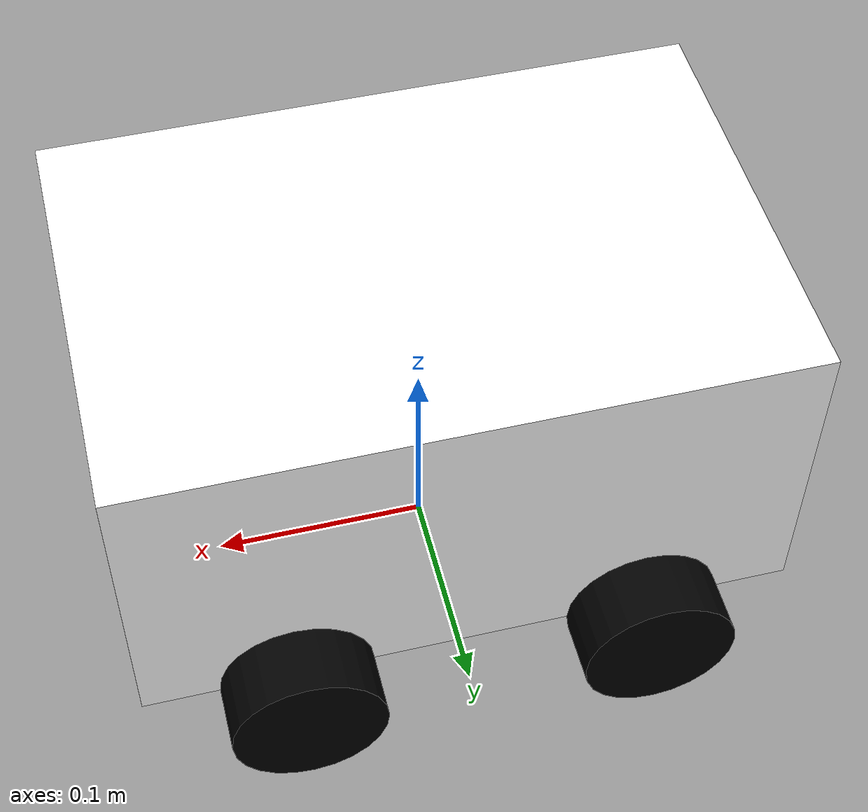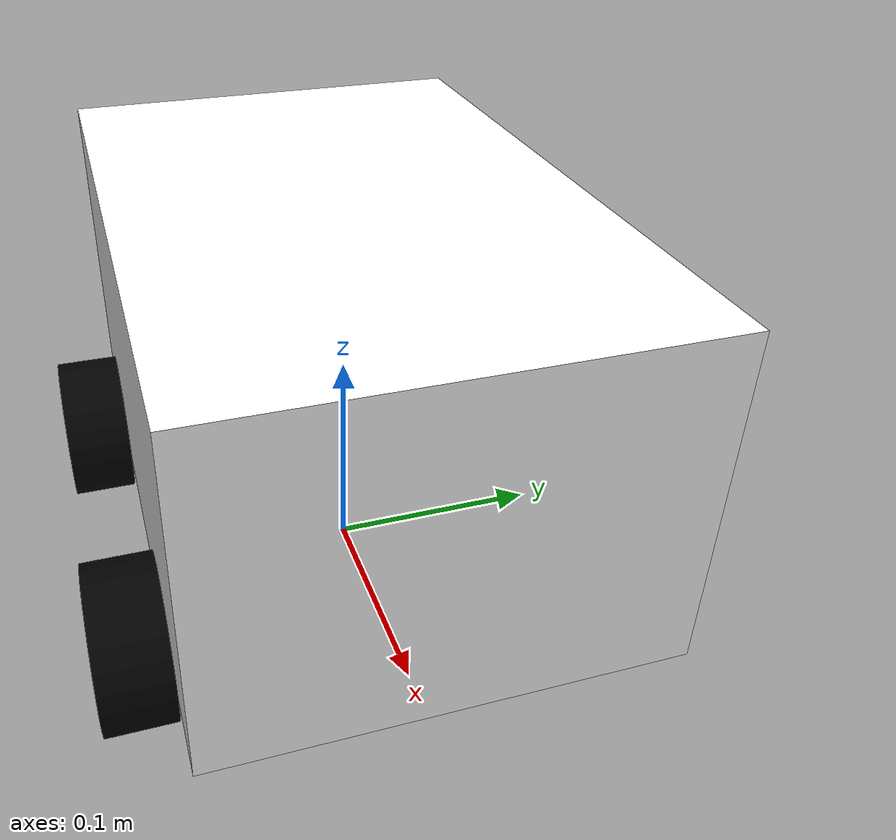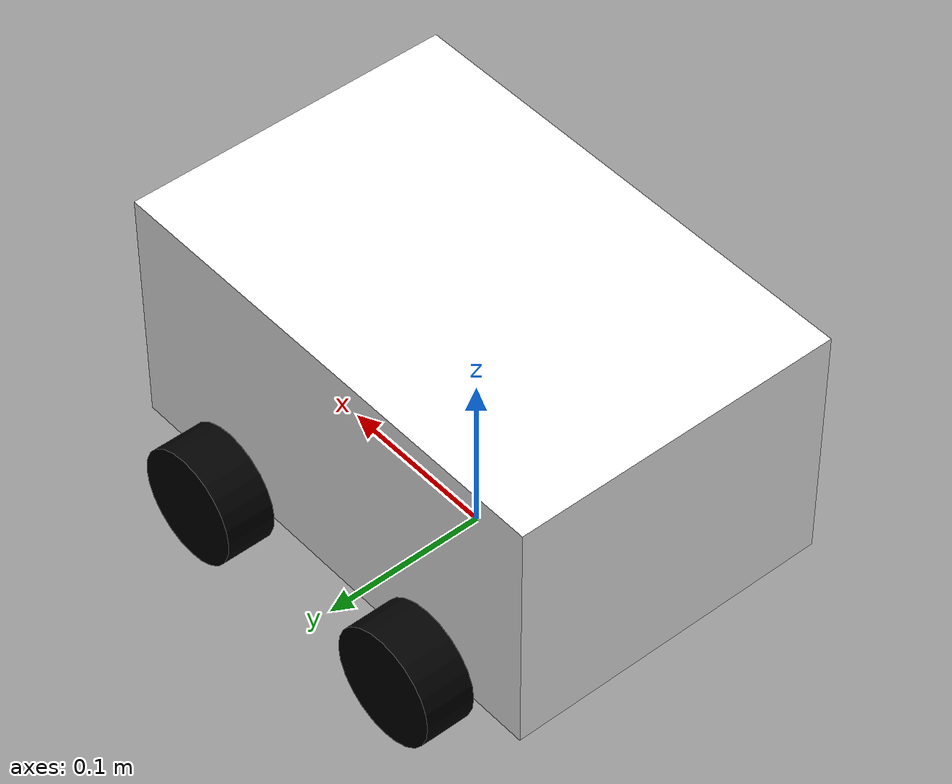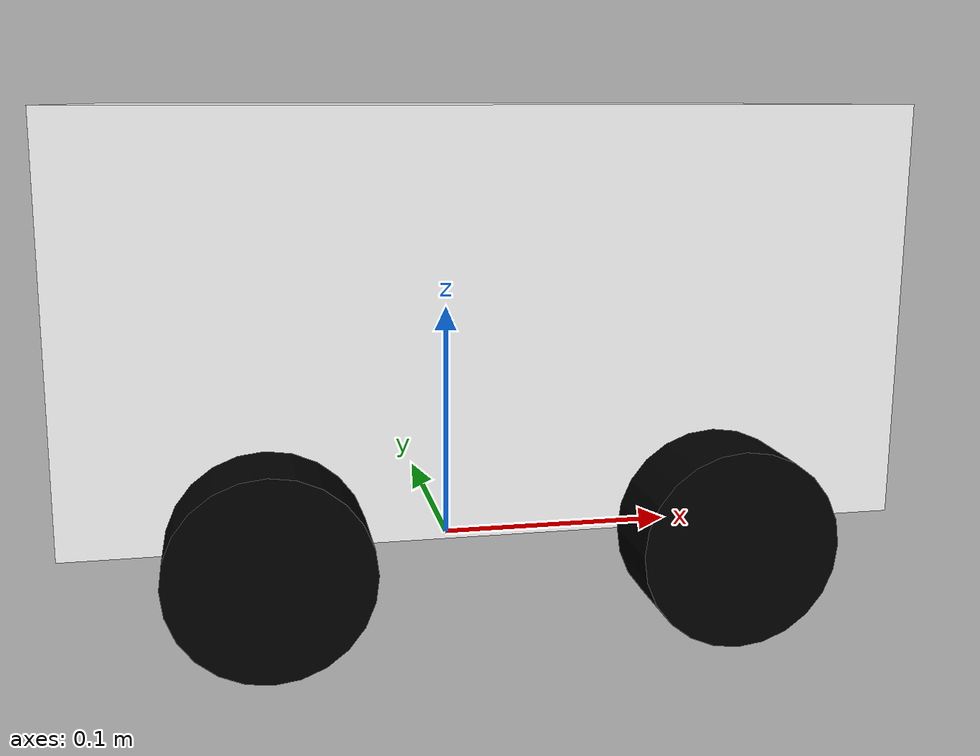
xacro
<?xml version="1.0"?>
<robot xmlns:xacro="http://www.ros.org/wiki/xacro" >

    <xacro:include filename="inertial_macros.xacro"/>

    <material name="white">
        <color rgba="1 1 1 1" />
    </material>

    <material name="pink">
        <color rgba="1 0.1 0.2 1"/>
    </material>

    <material name="blue">
        <color rgba="0.2 0.2 1 1"/>
    </material>

    <material name="black">
        <color rgba="0 0 0 1"/>
    </material>

    <!-- BASE LINK -->

    <link name="base_link">

    </link>

    <!-- CHASSIS LINK -->

     <joint name="chassis_joint" type="fixed">
        <parent link="base_link"/>
        <child link="chassis"/>
        <origin xyz="0 0 0"/>
    </joint>

    <link name="chassis">
        <visual>
            <origin xyz="0 0 0.11"/> <!-- połowa dlugosci chessis plis polowa kola 0.075 + 0.035-->
            <geometry>
                <box size="0.3 0.2 0.15"/>
            </geometry>
            <material name="white"/>
        </visual>
        <collision>
            <origin xyz="0 0 0.11"/>
            <geometry>
                <box size="0.3 0.2 0.15"/>
            </geometry>
        </collision>
        <xacro:inertial_box mass="0.5" x="0.3" y="0.2" z="0.15">
            <origin xyz="0 0 0.11" rpy="0 0 0"/>
        </xacro:inertial_box>
    </link>

    <gazebo reference="chassis">
        <material>Gazebo\Blue</material>
    </gazebo>

    <!-- LEFT DOWN WHEEL LINK -->

    <joint name="left_down_wheel_joint" type="continuous">
        <parent link="base_link"/>
        <child link="left_down_wheel"/>
        <origin xyz="-0.08 0.115 0.035" rpy="-${pi/2} 0 0" />
        <axis xyz="0 0 1"/>
    </joint>

    <link name="left_down_wheel">
        <visual>
            <geometry>
                <cylinder radius="0.035" length="0.03"/>
            </geometry>
            <material name="black"/>
        </visual>
        <collision>
            <geometry>
                <cylinder radius="0.035" length="0.03"/>
            </geometry>
        </collision>
        <xacro:inertial_cylinder mass="0.1" length="0.03" radius="0.035">
            <origin xyz="0 0 0" rpy="0 0 0"/>
        </xacro:inertial_cylinder>
    </link>

    <gazebo reference="left_down_wheel">
        <material>Gazebo\Black</material>
    </gazebo>

    <!-- RIGHT DOWN WHEEL LINK -->

    <joint name="right_down_wheel_joint" type="continuous">
        <parent link="base_link"/>
        <child link="right_down_wheel"/>
        <origin xyz="0.08 -0.115 0.035" rpy="${pi/2} 0 0" />
        <axis xyz="0 0 -1"/>
    </joint>

    <link name="right_down_wheel">
        <visual>
            <geometry>
                <cylinder radius="0.035" length="0.03"/>
            </geometry>
            <material name="black"/>
        </visual>
        <collision>
            <geometry>
                <cylinder radius="0.035" length="0.03"/>
            </geometry>
        </collision>
        <xacro:inertial_cylinder mass="0.1" length="0.03" radius="0.035">
            <origin xyz="0 0 0" rpy="0 0 0"/>
        </xacro:inertial_cylinder>
    </link>

    <gazebo reference="right_down_wheel">
        <material>Gazebo\Black</material>
    </gazebo>

    <!-- LEFT UP WHEEL LINK -->

    <joint name="left_up_wheel_joint" type="continuous">
        <parent link="base_link"/>
        <child link="left_up_wheel"/>
        <origin xyz="0.08 0.115 0.035" rpy="-${pi/2} 0 0" />
        <axis xyz="0 0 1"/>
    </joint>

    <link name="left_up_wheel">
        <visual>
            <geometry>
                <cylinder radius="0.035" length="0.03"/>
            </geometry>
            <material name="black"/>
        </visual>
        <collision>
            <geometry>
                <cylinder radius="0.035" length="0.03"/>
            </geometry>
        </collision>
        <xacro:inertial_cylinder mass="0.1" length="0.03" radius="0.035">
            <origin xyz="0 0 0" rpy="0 0 0"/>
        </xacro:inertial_cylinder>
    </link>

    <gazebo reference="left_up_wheel">
        <material>Gazebo\Black</material>
    </gazebo>

    <!-- RIGHT UP WHEEL LINK -->

    <joint name="right_up_wheel_joint" type="continuous">
        <parent link="base_link"/>
        <child link="right_up_wheel"/>
        <origin xyz="-0.08 -0.115 0.035" rpy="${pi/2} 0 0" />
        <axis xyz="0 0 -1"/>
    </joint>

    <link name="right_up_wheel">
        <visual>
            <geometry>
                <cylinder radius="0.035" length="0.03"/>
            </geometry>
            <material name="black"/>
        </visual>
        <collision>
            <geometry>
                <cylinder radius="0.035" length="0.03"/>
            </geometry>
        </collision>
        <xacro:inertial_cylinder mass="0.1" length="0.03" radius="0.035">
            <origin xyz="0 0 0" rpy="0 0 0"/>
        </xacro:inertial_cylinder>
    </link>

    <gazebo reference="right_up_wheel">
        <material>Gazebo\Black</material>
    </gazebo>

</robot>
